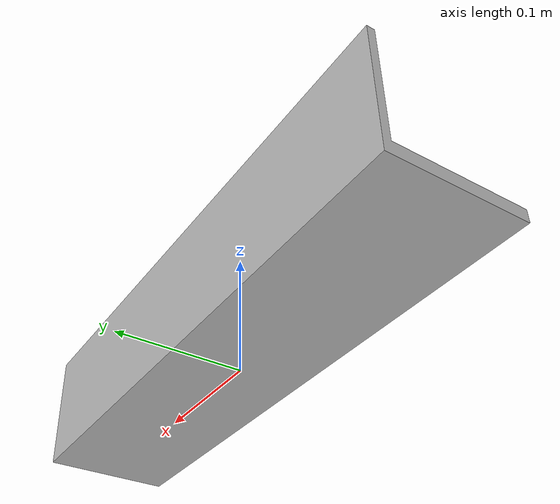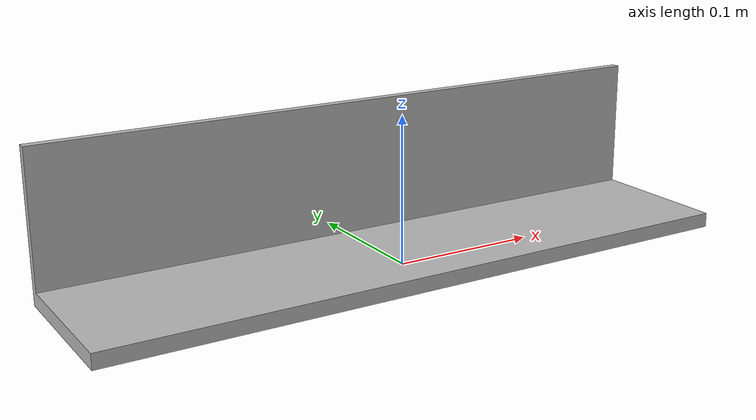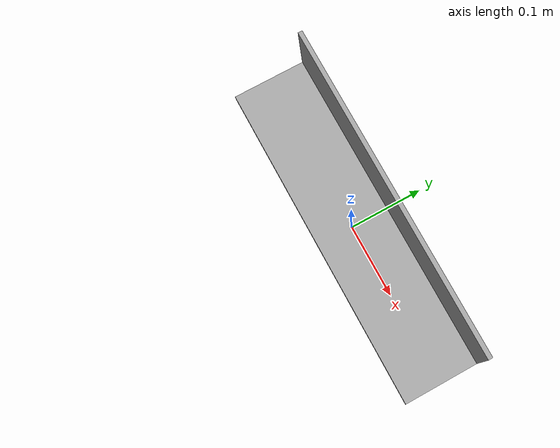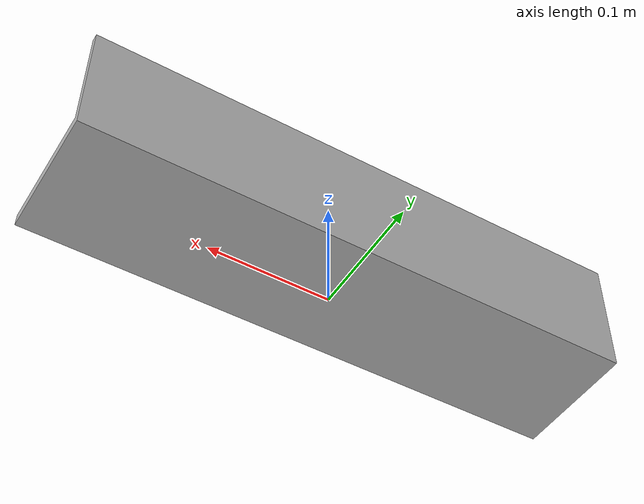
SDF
<?xml version="1.0" ?>
<sdf version="1.6">
  <model name="kurokawa_gray">
    <static>true</static>
    <link name="link">
      <collision name="collision">
        <geometry>
          <mesh>
            <scale>0.001 0.001 0.001</scale>
            <uri>model://kurokawa_gray/meshes/kurokawa_two_plane.stl</uri>
          </mesh>
        </geometry>
      </collision>
      <visual name="visual">
        <geometry>
          <mesh>
            <scale>0.001 0.001 0.001</scale>
            <uri>model://kurokawa_gray/meshes/kurokawa_two_plane.stl</uri>
          </mesh>
        </geometry>
        <material>
            <script>
                <uri>model://kurokawa_gray/materials/kurokawa_color.material</uri>
                <name>kurokawa_color</name>
            </script>
        </material>
      </visual>
    </link>
  </model>
</sdf>
